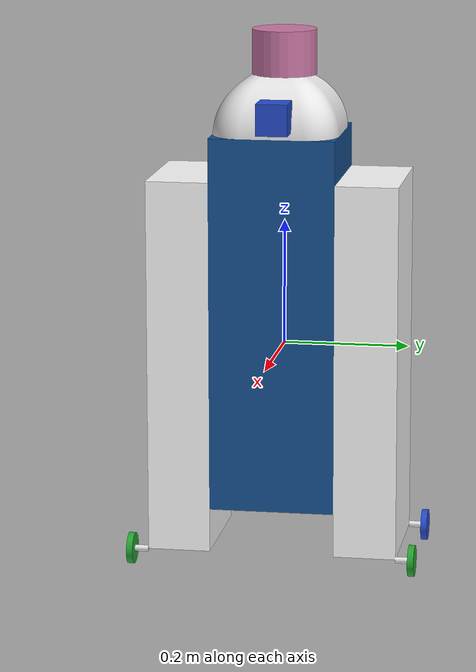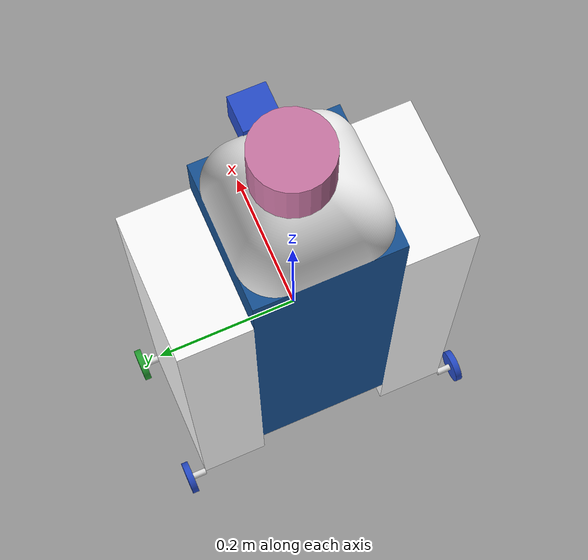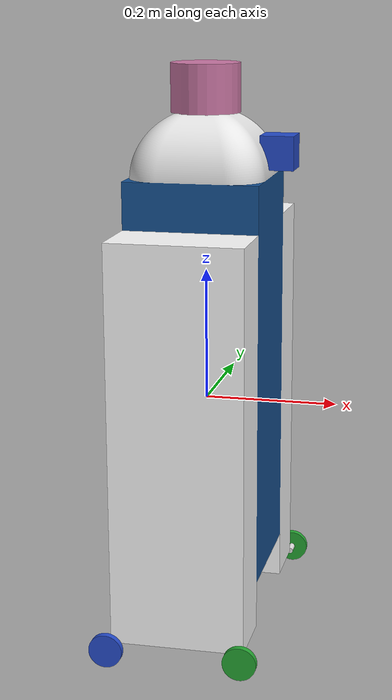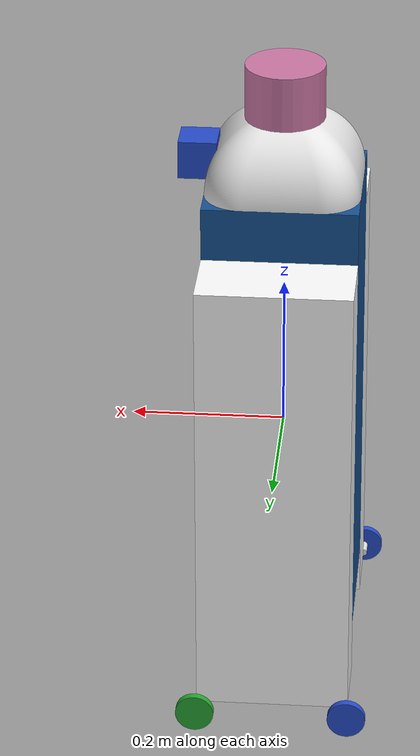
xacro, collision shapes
<?xml version="1.0" ?>

<robot name="robot" xmlns:xacro="https://www.ros.org/wiki/xacro">
  <xacro:property name = "cameraSize" value = "0.05" />
  <xacro:property name = "cameraMass" value = "0.1" />
  <xacro:arg name="gpu" default="false"/>
  <xacro:property name="gpu" value="$(arg gpu)" />

  <!-- include the xacro files-->
  <xacro:include filename="$(find robot_tutorial)/urdf/materials.xacro"/>
  <xacro:include filename="$(find robot_tutorial)/urdf/robot.gazebo"/>
  <xacro:include filename="$(find robot_tutorial)/urdf/macro.xacro" />

  <link name="base_link">
  </link>

  <link name="robot_body">
    <!-- pose and inertial -->
    <pose>0 0 0.1 0 0 0</pose>

    <inertial>
     <origin xyz="0 0 0" rpy="0 0 0" />
      <mass value="27.875"/>
      <inertia ixx="1.121e+0" ixy="3.55909983e-9" ixz="-9.359e-8" iyy="1.121e+0" iyz="-3.899e-9" izz="1.816e-1"/>
    </inertial>

    <collision name="collision_chassis">

      <geometry>
        <mesh filename="package://robot_tutorial/mesches/body_yes.dae" />
      </geometry>
    </collision>

    <visual>
      <origin xyz="0 0 0" rpy="0 0 0" />
      <geometry>
	      <mesh filename="package://robot_tutorial/mesches/body_yes.dae" />
      </geometry>
    </visual>
  </link>

  <joint name="joint_base_link_to_robot" type="fixed">
    <origin xyz="0.0 0.0 0.0" rpy="0.0 0.0 0.0"/>
    <parent link="base_link"/>
    <child link="robot_body"/>
  </joint>

  <!-- Create wheel right -->
  <xacro:link_wheel name="link_rightA_wheel"/>
  <xacro:joint_wheel name="joint_rightA_wheel" parent="robot_body"  child="link_rightA_wheel"  origin_xyz="-0.1 0.215 -0.326"  />

  <!-- Create wheel right -->
  <xacro:link_wheel name="link_rightB_wheel"/>
  <xacro:joint_wheel name="joint_rightB_wheel" parent="robot_body"   child="link_rightB_wheel"   origin_xyz="0.1 0.215 -0.326"  />

  <!-- Left Wheel link -->
  <xacro:link_wheel name="link_leftA_wheel"/>
  <xacro:joint_wheel name="joint_leftA_wheel" parent="robot_body"   child="link_leftA_wheel"   origin_xyz="-0.1 -0.238 -0.326"  />

  <!-- Left Wheel link -->
  <xacro:link_wheel name="link_leftB_wheel"/>
  <xacro:joint_wheel name="joint_leftB_wheel" parent="robot_body"   child="link_leftB_wheel"   origin_xyz="0.1 -0.238 -0.326"  />

  <!-- VLP-16 -->
  <xacro:include filename="$(find velodyne_description)/urdf/VLP-16.urdf.xacro"/>
  <VLP-16 parent="robot_body" name="velodyne" topic="/velodyne_points" hz="10" samples="440" gpu="${gpu}">
    <origin xyz="0 0 0.435" rpy="0 0 0" />
  </VLP-16>

  <!-- Camera -->
  <link name="camera">
    <collision>
      <origin xyz="0 0 0" rpy="0 0 0"/>
      <geometry>
        <box size="${cameraSize} ${cameraSize} ${cameraSize}"/>
      </geometry>
    </collision>
    <visual>
      <origin xyz="0 0 0" rpy="0 0 0"/>
      <geometry>
        <box size="${cameraSize} ${cameraSize} ${cameraSize}"/>
      </geometry>
      <material name="blue"/>
    </visual>
    <inertial>
      <mass value="${cameraMass}" />
      <origin xyz="0 0 0" rpy="0 0 0"/>
      <box_inertia m="${cameraMass}" x="${cameraSize}" y="${cameraSize}" z="${cameraSize}" />
    </inertial>
  </link>

  <joint name="joint_robot_to_camera" type="fixed">
    <origin  xyz="0.11 0 0.38" rpy="0.0 0.0 0.0"/>
    <parent link="robot_body"/>
    <child link="camera"/>
  </joint>

</robot>

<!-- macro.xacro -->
<robot xmlns:xacro="http://www.ros.org/wiki/xacro">
  <xacro:macro name="link_wheel" params="name">
      <link name="${name}">
          <inertial>
            <mass value="0.2"/>
            <origin rpy="0 1.5707 1.5707" xyz="0 0 0"/>
            <inertia ixx="0.000526666666667" ixy="0" ixz="0" iyy="0.000526666666667" iyz="0" izz="0.001"/>
          </inertial>
          <collision name="link_right_wheel_collision">
            <origin rpy="0 1.5707 1.5707" xyz="0 0 0"/>
            <geometry>
              <mesh filename="package://urdf_tutorial/mesches/wheel.dae" />
            </geometry>
          </collision>
          <visual name="${name}_visual">
            <origin rpy="0 1.5707 1.5707" xyz="0 0 0"/>
            <geometry>
              <mesh filename="package://urdf_tutorial/mesches/wheel.dae" />
            </geometry>
          </visual>
      </link>
  </xacro:macro>

  <xacro:macro name="joint_wheel" params="name parent child origin_xyz">
    <joint name="${name}" type="continuous">
      <origin rpy="0 0 0" xyz="${origin_xyz}"/>
      <child link="${child}"/>
      <parent link="${parent}"/>
      <axis rpy="0 0 0" xyz="0 1 0"/>
      <limit effort="10000" velocity="1000"/>
      <joint_properties damping="1.0" friction="1.0"/>
    </joint>
  </xacro:macro>

  <xacro:macro name="cylinder_inertia" params="mass r l">
    <inertia ixx="${mass*(3*r*r+l*l)/12}" ixy = "0" ixz = "0" iyy="${mass*(3*r*r+l*l)/12}" iyz = "0" izz="${mass*(r*r)/2}" />
  </xacro:macro>

</robot>

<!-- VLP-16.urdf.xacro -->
<robot xmlns:xacro="http://www.ros.org/wiki/xacro" name="VLP-16">
  <xacro:property name="M_PI" value="3.1415926535897931" />
  <xacro:macro name="VLP-16" params="*origin is_sim:=true parent:=base_link name:=velodyne tf_prefix:='' topic:=/velodyne_points organize_cloud:=false hz:=10 lasers:=16 samples:=1875 collision_range:=0.3 min_range:=0.0 max_range:=100.0 noise:=0.008 min_angle:=-${M_PI} max_angle:=${M_PI} gpu:=false">

    <joint name="${name}_base_mount_joint" type="fixed">
      <xacro:insert_block name="origin" />
      <parent link="${parent}"/>
      <child link="${name}_base_link"/>
    </joint>

    <link name="${name}_base_link">
      <inertial>
        <mass value="0.83"/>
        <origin xyz="0 0 0.03585"/>
        <inertia ixx="${(0.83 * (3.0*0.0516*0.0516 + 0.0717*0.0717)) / 12.0}" ixy="0" ixz="0"
          iyy="${(0.83 * (3.0*0.0516*0.0516 + 0.0717*0.0717)) / 12.0}" iyz="0"
          izz="${0.5 * 0.83 * (0.0516*0.0516)}"/>
      </inertial>
      <visual>
        <geometry>
          <mesh filename="package://velodyne_description/meshes/VLP16_base_1.dae" />
        </geometry>
      </visual>
      <visual>
        <geometry>
          <mesh filename="package://velodyne_description/meshes/VLP16_base_2.dae" />
        </geometry>
      </visual>
      <collision>
        <origin rpy="0 0 0" xyz="0 0 0.03585"/>
        <geometry>
          <cylinder radius="0.0516" length="0.0717"/>
        </geometry>
      </collision>
    </link>

    <joint name="${name}_base_scan_joint" type="fixed" >
      <origin xyz="0 0 0.0377" rpy="0 0 0" />
      <parent link="${name}_base_link" />
      <child link="${name}"/>
    </joint>

    <link name="${name}">
      <inertial>
        <mass value="0.01"/>
        <origin xyz="0 0 0"/>
        <inertia ixx="1e-7" ixy="0" ixz="0" iyy="1e-7" iyz="0" izz="1e-7"/>
      </inertial>
      <visual>
        <origin xyz="0 0 -0.0377" />
        <geometry>
          <mesh filename="package://velodyne_description/meshes/VLP16_scan.dae" />
        </geometry>
      </visual>
      <collision>
        <geometry>
          <sphere radius="0"/>
        </geometry>
      </collision>
    </link>

    <!-- Gazebo requires the velodyne_gazebo_plugins package -->
    <xacro:if value="${is_sim}">
        <gazebo reference="${name}">
            <xacro:if value="${gpu}">
                <sensor type="gpu_ray" name="${name}-VLP16">
                <pose>0 0 0 0 0 0</pose>
                <visualize>false</visualize>
                <update_rate>${hz}</update_rate>
                <ray>
                    <scan>
                    <horizontal>
                        <samples>${samples}</samples>
                        <resolution>1</resolution>
                        <min_angle>${min_angle}</min_angle>
                        <max_angle>${max_angle}</max_angle>
                    </horizontal>
                    <vertical>
                        <samples>${lasers}</samples>
                        <resolution>1</resolution>
                        <min_angle>-${15.0*M_PI/180.0}</min_angle>
                        <max_angle> ${15.0*M_PI/180.0}</max_angle>
                    </vertical>
                    </scan>
                    <range>
                    <min>${collision_range}</min>
                    <max>${max_range+1}</max>
                    <resolution>0.001</resolution>
                    </range>
                    <noise>
                    <type>gaussian</type>
                    <mean>0.0</mean>
                    <stddev>0.0</stddev>
                    </noise>
                </ray>
                <plugin name="gazebo_ros_laser_controller" filename="libgazebo_ros_velodyne_laser.so">
                    <ros>
                    <namespace>/${name}</namespace>
                    <remapping>~/out:=${topic}</remapping>
                    </ros>
                    <tf_prefix>${tf_prefix}</tf_prefix>
                    <frame_name>${name}</frame_name>
                    <organize_cloud>${organize_cloud}</organize_cloud>
                    <min_range>${min_range}</min_range>
                    <max_range>${max_range}</max_range>
                    <gaussian_noise>${noise}</gaussian_noise>
                </plugin>
                </sensor>
            </xacro:if>
            <xacro:unless value="${gpu}">
                <sensor type="ray" name="${name}-VLP16">
                <pose>0 0 0 0 0 0</pose>
                <visualize>false</visualize>
                <update_rate>${hz}</update_rate>
                <ray>
                    <scan>
                    <horizontal>
                        <samples>${samples}</samples>
                        <resolution>1</resolution>
                        <min_angle>${min_angle}</min_angle>
                        <max_angle>${max_angle}</max_angle>
                    </horizontal>
                    <vertical>
                        <samples>${lasers}</samples>
                        <resolution>1</resolution>
                        <min_angle>-${15.0*M_PI/180.0}</min_angle>
                        <max_angle> ${15.0*M_PI/180.0}</max_angle>
                    </vertical>
                    </scan>
                    <range>
                    <min>${collision_range}</min>
                    <max>${max_range+1}</max>
                    <resolution>0.001</resolution>
                    </range>
                    <noise>
                    <type>gaussian</type>
                    <mean>0.0</mean>
                    <stddev>0.0</stddev>
                    </noise>
                </ray>
                <plugin name="gazebo_ros_laser_controller" filename="libgazebo_ros_velodyne_laser.so">
                    <ros>
                    <namespace>/${name}</namespace>
                    <remapping>~/out:=${topic}</remapping>
                    </ros>
                    <tf_prefix>${tf_prefix}</tf_prefix>
                    <frame_name>${name}</frame_name>
                    <organize_cloud>${organize_cloud}</organize_cloud>
                    <min_range>${min_range}</min_range>
                    <max_range>${max_range}</max_range>
                    <gaussian_noise>${noise}</gaussian_noise>
                </plugin>
                </sensor>
            </xacro:unless>
        </gazebo>
    </xacro:if>

  </xacro:macro>
</robot>
